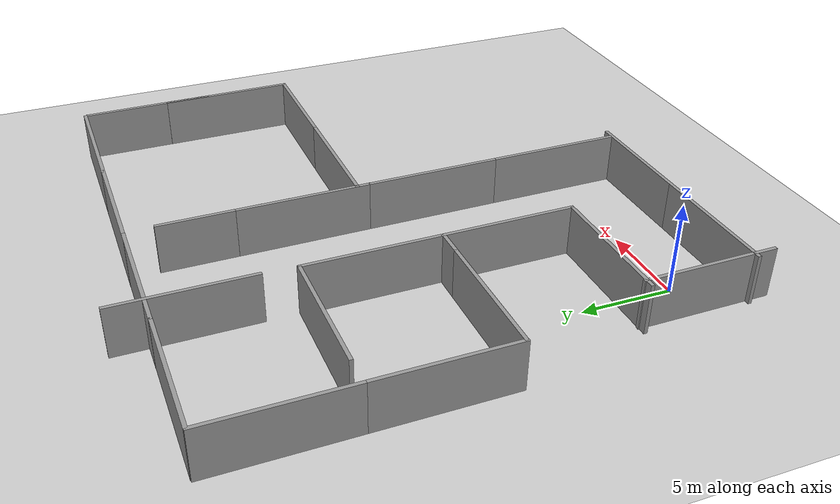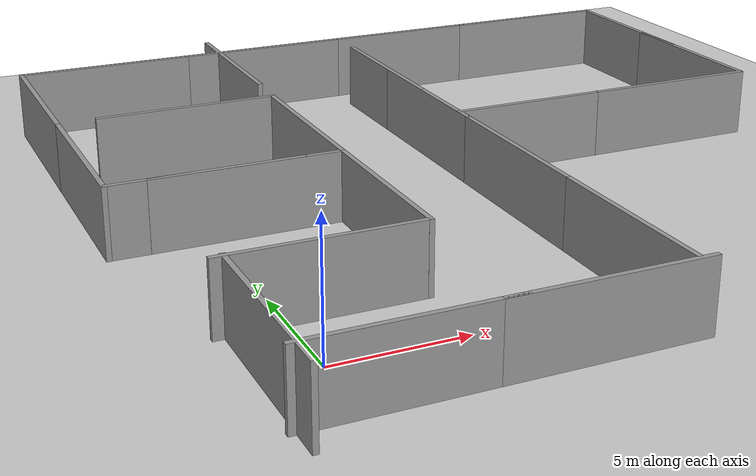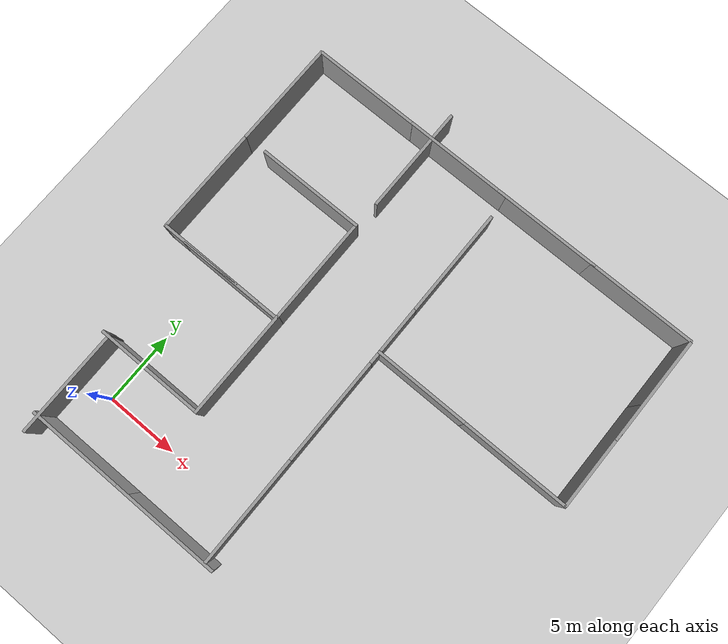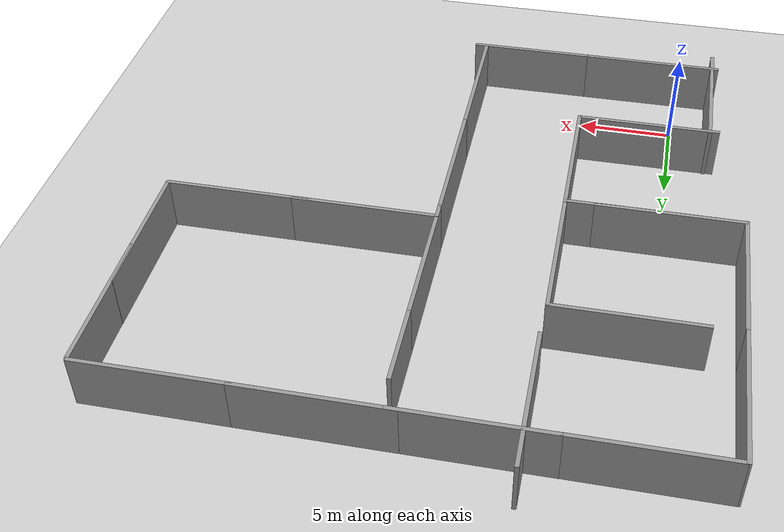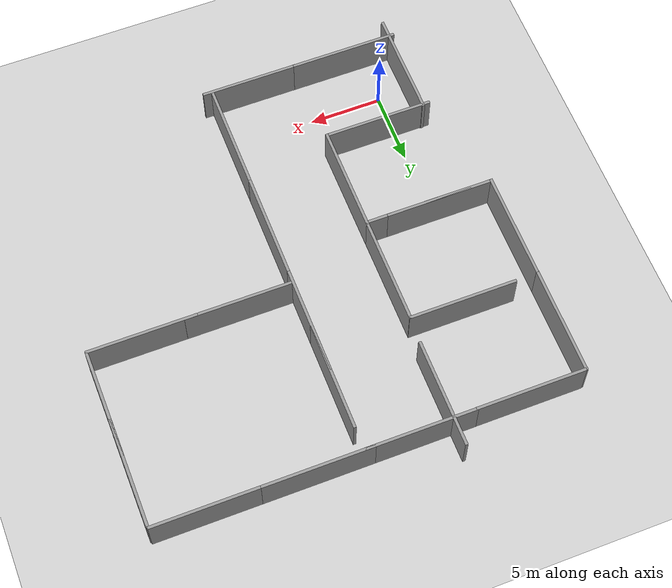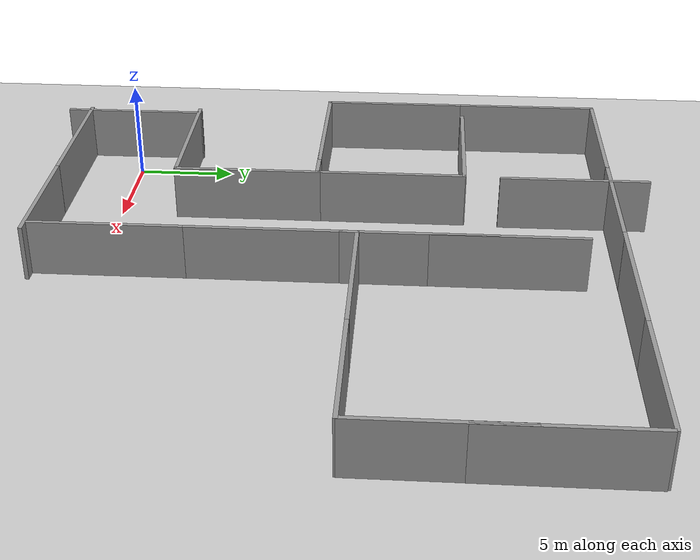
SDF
<sdf version="1.7">
 <world name="default">
  <light name="sun" type="directional">
   <pose>0 0 10 0 -0 0</pose>
   <diffuse>0.8 0.8 0.8 1</diffuse>
   <specular>0.2 0.2 0.2 1</specular>
   <attenuation>
    <range>1000</range>
    <constant>0.9</constant>
    <linear>0.01</linear>
    <quadratic>0.001</quadratic>
   </attenuation>
   <direction>-0.5 0.1 -0.9</direction>
   <spot><inner_angle>0</inner_angle><outer_angle>0</outer_angle><falloff>0</falloff></spot>
  </light>
  <model name="ground_plane">
   <static>1</static>
   <link name="link">
    <collision name="collision">
     <geometry><plane><normal>0 0 1</normal><size>100 100</size></plane></geometry>
     <surface>
      <contact><collide_bitmask>65535</collide_bitmask></contact>
      <friction><ode><mu>100</mu><mu2>50</mu2></ode></friction>
     </surface>
    </collision>
    <visual name="visual">
     <cast_shadows>0</cast_shadows>
     <geometry><plane><normal>0 0 1</normal><size>100 100</size></plane></geometry>
     <material>
      <script><uri>file://media/materials/scripts/gazebo.material</uri><name>Gazebo/Grey</name></script>
     </material>
    </visual>
   </link>
  </model>
  <gravity>0 0 -9.8</gravity>
  <magnetic_field>6e-06 2.3e-05 -4.2e-05</magnetic_field>
  <atmosphere type="adiabatic"/>
  <physics type="ode">
   <max_step_size>0.001</max_step_size>
   <real_time_factor>1</real_time_factor>
   <real_time_update_rate>1000</real_time_update_rate>
  </physics>
  <scene><ambient>0.4 0.4 0.4 1</ambient><background>0.7 0.7 0.7 1</background><shadows>1</shadows></scene>
  <spherical_coordinates>
   <surface_model>EARTH_WGS84</surface_model>
   <latitude_deg>0</latitude_deg>
   <longitude_deg>0</longitude_deg>
   <elevation>0</elevation>
   <heading_deg>0</heading_deg>
  </spherical_coordinates>
  <model name="grey_wall">
   <static>1</static>
   <link name="link">
    <pose>0 0 1.4 0 -0 0</pose>
    <collision name="collision"><geometry><box><size>7.5 0.2 2.8</size></box></geometry></collision>
    <visual name="visual">
     <cast_shadows>0</cast_shadows>
     <geometry><box><size>7.5 0.2 2.8</size></box></geometry>
     <material>
      <script>
       <uri>model://grey_wall/materials/scripts</uri>
       <uri>model://grey_wall/materials/textures</uri>
       <name>vrc/grey_wall</name>
      </script>
     </material>
    </visual>
   </link>
   <pose>1.40217 -3.11305 0 0 -0 0</pose>
  </model>
  <model name="grey_wall_clone">
   <static>1</static>
   <link name="link">
    <pose>0 0 1.4 0 -0 0</pose>
    <collision name="collision"><geometry><box><size>7.5 0.2 2.8</size></box></geometry></collision>
    <visual name="visual">
     <cast_shadows>0</cast_shadows>
     <geometry><box><size>7.5 0.2 2.8</size></box></geometry>
     <material>
      <script>
       <uri>model://grey_wall/materials/scripts</uri>
       <uri>model://grey_wall/materials/textures</uri>
       <name>vrc/grey_wall</name>
      </script>
     </material>
    </visual>
   </link>
   <pose>-2 -0.592398 0 0 0 -1.56643</pose>
  </model>
  <model name="grey_wall_clone_0">
   <static>1</static>
   <link name="link">
    <pose>0 0 1.4 0 -0 0</pose>
    <collision name="collision"><geometry><box><size>7.5 0.2 2.8</size></box></geometry></collision>
    <visual name="visual">
     <cast_shadows>0</cast_shadows>
     <geometry><box><size>7.5 0.2 2.8</size></box></geometry>
     <material>
      <script>
       <uri>model://grey_wall/materials/scripts</uri>
       <uri>model://grey_wall/materials/textures</uri>
       <name>vrc/grey_wall</name>
      </script>
     </material>
    </visual>
   </link>
   <pose>1.22571 3 0 0 -0 0</pose>
  </model>
  <model name="grey_wall_clone_1">
   <static>1</static>
   <link name="link">
    <pose>0 0 1.4 0 -0 0</pose>
    <collision name="collision"><geometry><box><size>7.5 0.2 2.8</size></box></geometry></collision>
    <visual name="visual">
     <cast_shadows>0</cast_shadows>
     <geometry><box><size>7.5 0.2 2.8</size></box></geometry>
     <material>
      <script>
       <uri>model://grey_wall/materials/scripts</uri>
       <uri>model://grey_wall/materials/textures</uri>
       <name>vrc/grey_wall</name>
      </script>
     </material>
    </visual>
   </link>
   <pose>8 -3.11325 -0 0 -0 0</pose>
  </model>
  <model name="grey_wall_clone_clone">
   <static>1</static>
   <link name="link">
    <pose>0 0 1.4 0 -0 0</pose>
    <collision name="collision"><geometry><box><size>7.5 0.2 2.8</size></box></geometry></collision>
    <visual name="visual">
     <cast_shadows>0</cast_shadows>
     <geometry><box><size>7.5 0.2 2.8</size></box></geometry>
     <material>
      <script>
       <uri>model://grey_wall/materials/scripts</uri>
       <uri>model://grey_wall/materials/textures</uri>
       <name>vrc/grey_wall</name>
      </script>
     </material>
    </visual>
   </link>
   <pose>11.0667 0.702394 0 0 0 -1.56643</pose>
  </model>
  <model name="grey_wall_clone_clone_0">
   <static>1</static>
   <link name="link">
    <pose>0 0 1.4 0 -0 0</pose>
    <collision name="collision"><geometry><box><size>7.5 0.2 2.8</size></box></geometry></collision>
    <visual name="visual">
     <cast_shadows>0</cast_shadows>
     <geometry><box><size>7.5 0.2 2.8</size></box></geometry>
     <material>
      <script>
       <uri>model://grey_wall/materials/scripts</uri>
       <uri>model://grey_wall/materials/textures</uri>
       <name>vrc/grey_wall</name>
      </script>
     </material>
    </visual>
   </link>
   <pose>11.0338 8.18805 0 0 0 -1.56643</pose>
  </model>
  <model name="grey_wall_clone_clone_0_clone_0">
   <static>1</static>
   <link name="link">
    <pose>0 0 1.4 0 -0 0</pose>
    <collision name="collision"><geometry><box><size>7.5 0.2 2.8</size></box></geometry></collision>
    <visual name="visual">
     <cast_shadows>0</cast_shadows>
     <geometry><box><size>7.5 0.2 2.8</size></box></geometry>
     <material>
      <script>
       <uri>model://grey_wall/materials/scripts</uri>
       <uri>model://grey_wall/materials/textures</uri>
       <name>vrc/grey_wall</name>
      </script>
     </material>
    </visual>
   </link>
   <pose>4.96657 6.64857 0 0 0 -1.56643</pose>
  </model>
  <model name="grey_wall_clone_clone_0_clone_1">
   <static>1</static>
   <link name="link">
    <pose>0 0 1.4 0 -0 0</pose>
    <collision name="collision"><geometry><box><size>7.5 0.2 2.8</size></box></geometry></collision>
    <visual name="visual">
     <cast_shadows>0</cast_shadows>
     <geometry><box><size>7.5 0.2 2.8</size></box></geometry>
     <material>
      <script>
       <uri>model://grey_wall/materials/scripts</uri>
       <uri>model://grey_wall/materials/textures</uri>
       <name>vrc/grey_wall</name>
      </script>
     </material>
    </visual>
   </link>
   <pose>11.002 15.5366 0 0 0 -1.56643</pose>
  </model>
  <model name="grey_wall_clone_clone_0_clone_0_clone_0">
   <static>1</static>
   <link name="link">
    <pose>0 0 1.4 0 -0 0</pose>
    <collision name="collision"><geometry><box><size>7.5 0.2 2.8</size></box></geometry></collision>
    <visual name="visual">
     <cast_shadows>0</cast_shadows>
     <geometry><box><size>7.5 0.2 2.8</size></box></geometry>
     <material>
      <script>
       <uri>model://grey_wall/materials/scripts</uri>
       <uri>model://grey_wall/materials/textures</uri>
       <name>vrc/grey_wall</name>
      </script>
     </material>
    </visual>
   </link>
   <pose>10.9845 19.7202 0 0 0 -1.56643</pose>
  </model>
  <model name="grey_wall_clone_0_clone">
   <static>1</static>
   <link name="link">
    <pose>0 0 1.4 0 -0 0</pose>
    <collision name="collision"><geometry><box><size>7.5 0.2 2.8</size></box></geometry></collision>
    <visual name="visual">
     <cast_shadows>0</cast_shadows>
     <geometry><box><size>7.5 0.2 2.8</size></box></geometry>
     <material>
      <script>
       <uri>model://grey_wall/materials/scripts</uri>
       <uri>model://grey_wall/materials/textures</uri>
       <name>vrc/grey_wall</name>
      </script>
     </material>
    </visual>
   </link>
   <pose>7.11633 25.0158 0 0 -0 0</pose>
  </model>
  <model name="grey_wall_clone_clone_0_clone_0_clone">
   <static>1</static>
   <link name="link">
    <pose>0 0 1.4 0 -0 0</pose>
    <collision name="collision"><geometry><box><size>7.5 0.2 2.8</size></box></geometry></collision>
    <visual name="visual">
     <cast_shadows>0</cast_shadows>
     <geometry><box><size>7.5 0.2 2.8</size></box></geometry>
     <material>
      <script>
       <uri>model://grey_wall/materials/scripts</uri>
       <uri>model://grey_wall/materials/textures</uri>
       <name>vrc/grey_wall</name>
      </script>
     </material>
    </visual>
   </link>
   <pose>4.93403 14.0157 0 0 0 -1.56643</pose>
  </model>
  <model name="grey_wall_clone_clone_0_clone_0_clone_clone">
   <static>1</static>
   <link name="link">
    <pose>0 0 1.4 0 -0 0</pose>
    <collision name="collision"><geometry><box><size>7.5 0.2 2.8</size></box></geometry></collision>
    <visual name="visual">
     <cast_shadows>0</cast_shadows>
     <geometry><box><size>7.5 0.2 2.8</size></box></geometry>
     <material>
      <script>
       <uri>model://grey_wall/materials/scripts</uri>
       <uri>model://grey_wall/materials/textures</uri>
       <name>vrc/grey_wall</name>
      </script>
     </material>
    </visual>
   </link>
   <pose>4.99892 23.2462 0 0 0 -1.56643</pose>
  </model>
  <model name="grey_wall_clone_0_clone_clone">
   <static>1</static>
   <link name="link">
    <pose>0 0 1.4 0 -0 0</pose>
    <collision name="collision"><geometry><box><size>7.5 0.2 2.8</size></box></geometry></collision>
    <visual name="visual">
     <cast_shadows>0</cast_shadows>
     <geometry><box><size>7.5 0.2 2.8</size></box></geometry>
     <material>
      <script>
       <uri>model://grey_wall/materials/scripts</uri>
       <uri>model://grey_wall/materials/textures</uri>
       <name>vrc/grey_wall</name>
      </script>
     </material>
    </visual>
   </link>
   <pose>13.9606 25.0202 0 0 -0 0</pose>
  </model>
  <model name="grey_wall_clone_0_clone_clone_0">
   <static>1</static>
   <link name="link">
    <pose>0 0 1.4 0 -0 0</pose>
    <collision name="collision"><geometry><box><size>7.5 0.2 2.8</size></box></geometry></collision>
    <visual name="visual">
     <cast_shadows>0</cast_shadows>
     <geometry><box><size>7.5 0.2 2.8</size></box></geometry>
     <material>
      <script>
       <uri>model://grey_wall/materials/scripts</uri>
       <uri>model://grey_wall/materials/textures</uri>
       <name>vrc/grey_wall</name>
      </script>
     </material>
    </visual>
   </link>
   <pose>14.674 12.6241 0 0 -0 0</pose>
  </model>
  <model name="grey_wall_clone_0_clone_clone_0_clone">
   <static>1</static>
   <link name="link">
    <pose>0 0 1.4 0 -0 0</pose>
    <collision name="collision"><geometry><box><size>7.5 0.2 2.8</size></box></geometry></collision>
    <visual name="visual">
     <cast_shadows>0</cast_shadows>
     <geometry><box><size>7.5 0.2 2.8</size></box></geometry>
     <material>
      <script>
       <uri>model://grey_wall/materials/scripts</uri>
       <uri>model://grey_wall/materials/textures</uri>
       <name>vrc/grey_wall</name>
      </script>
     </material>
    </visual>
   </link>
   <pose>21.258 12.6215 0 0 -0 0</pose>
  </model>
  <model name="grey_wall_clone_clone_0_clone_0_clone_0_clone">
   <static>1</static>
   <link name="link">
    <pose>0 0 1.4 0 -0 0</pose>
    <collision name="collision"><geometry><box><size>7.5 0.2 2.8</size></box></geometry></collision>
    <visual name="visual">
     <cast_shadows>0</cast_shadows>
     <geometry><box><size>7.5 0.2 2.8</size></box></geometry>
     <material>
      <script>
       <uri>model://grey_wall/materials/scripts</uri>
       <uri>model://grey_wall/materials/textures</uri>
       <name>vrc/grey_wall</name>
      </script>
     </material>
    </visual>
   </link>
   <pose>24.9131 16.3545 0 0 0 -1.56643</pose>
  </model>
  <model name="grey_wall_clone_0_clone_clone_clone">
   <static>1</static>
   <link name="link">
    <pose>0 0 1.4 0 -0 0</pose>
    <collision name="collision"><geometry><box><size>7.5 0.2 2.8</size></box></geometry></collision>
    <visual name="visual">
     <cast_shadows>0</cast_shadows>
     <geometry><box><size>7.5 0.2 2.8</size></box></geometry>
     <material>
      <script>
       <uri>model://grey_wall/materials/scripts</uri>
       <uri>model://grey_wall/materials/textures</uri>
       <name>vrc/grey_wall</name>
      </script>
     </material>
    </visual>
   </link>
   <pose>21.1707 25.0196 -0 0 -0 0</pose>
  </model>
  <model name="grey_wall_clone_clone_0_clone_0_clone_0_clone_clone">
   <static>1</static>
   <link name="link">
    <pose>0 0 1.4 0 -0 0</pose>
    <collision name="collision"><geometry><box><size>7.5 0.2 2.8</size></box></geometry></collision>
    <visual name="visual">
     <cast_shadows>0</cast_shadows>
     <geometry><box><size>7.5 0.2 2.8</size></box></geometry>
     <material>
      <script>
       <uri>model://grey_wall/materials/scripts</uri>
       <uri>model://grey_wall/materials/textures</uri>
       <name>vrc/grey_wall</name>
      </script>
     </material>
    </visual>
   </link>
   <pose>24.8992 21.2455 0 0 0 -1.56643</pose>
  </model>
  <model name="grey_wall_clone_0_clone_clone_1">
   <static>1</static>
   <link name="link">
    <pose>0 0 1.4 0 -0 0</pose>
    <collision name="collision"><geometry><box><size>7.5 0.2 2.8</size></box></geometry></collision>
    <visual name="visual">
     <cast_shadows>0</cast_shadows>
     <geometry><box><size>7.5 0.2 2.8</size></box></geometry>
     <material>
      <script>
       <uri>model://grey_wall/materials/scripts</uri>
       <uri>model://grey_wall/materials/textures</uri>
       <name>vrc/grey_wall</name>
      </script>
     </material>
    </visual>
   </link>
   <pose>-0.268428 25.0078 0 0 -0 0</pose>
  </model>
  <model name="grey_wall_clone_0_clone_clone_1_clone">
   <static>1</static>
   <link name="link">
    <pose>0 0 1.4 0 -0 0</pose>
    <collision name="collision"><geometry><box><size>7.5 0.2 2.8</size></box></geometry></collision>
    <visual name="visual">
     <cast_shadows>0</cast_shadows>
     <geometry><box><size>7.5 0.2 2.8</size></box></geometry>
     <material>
      <script>
       <uri>model://grey_wall/materials/scripts</uri>
       <uri>model://grey_wall/materials/textures</uri>
       <name>vrc/grey_wall</name>
      </script>
     </material>
    </visual>
   </link>
   <pose>1.2661 17.7091 0 0 -0 0</pose>
  </model>
  <model name="grey_wall_clone_clone_0_clone_0_clone_clone_clone">
   <static>1</static>
   <link name="link">
    <pose>0 0 1.4 0 -0 0</pose>
    <collision name="collision"><geometry><box><size>7.5 0.2 2.8</size></box></geometry></collision>
    <visual name="visual">
     <cast_shadows>0</cast_shadows>
     <geometry><box><size>7.5 0.2 2.8</size></box></geometry>
     <material>
      <script>
       <uri>model://grey_wall/materials/scripts</uri>
       <uri>model://grey_wall/materials/textures</uri>
       <name>vrc/grey_wall</name>
      </script>
     </material>
    </visual>
   </link>
   <pose>-4.01016 21.3343 0 0 0 -1.56643</pose>
  </model>
  <model name="grey_wall_clone_clone_0_clone_0_clone_clone_clone_clone">
   <static>1</static>
   <link name="link">
    <pose>0 0 1.4 0 -0 0</pose>
    <collision name="collision"><geometry><box><size>7.5 0.2 2.8</size></box></geometry></collision>
    <visual name="visual">
     <cast_shadows>0</cast_shadows>
     <geometry><box><size>7.5 0.2 2.8</size></box></geometry>
     <material>
      <script>
       <uri>model://grey_wall/materials/scripts</uri>
       <uri>model://grey_wall/materials/textures</uri>
       <name>vrc/grey_wall</name>
      </script>
     </material>
    </visual>
   </link>
   <pose>-3.97615 13.8881 0 0 0 -1.56643</pose>
  </model>
  <model name="grey_wall_clone_0_clone_clone_1_clone_clone">
   <static>1</static>
   <link name="link">
    <pose>0 0 1.4 0 -0 0</pose>
    <collision name="collision"><geometry><box><size>7.5 0.2 2.8</size></box></geometry></collision>
    <visual name="visual">
     <cast_shadows>0</cast_shadows>
     <geometry><box><size>7.5 0.2 2.8</size></box></geometry>
     <material>
      <script>
       <uri>model://grey_wall/materials/scripts</uri>
       <uri>model://grey_wall/materials/textures</uri>
       <name>vrc/grey_wall</name>
      </script>
     </material>
    </visual>
   </link>
   <pose>-0.252782 10.2459 0 0 -0 0</pose>
  </model>
  <model name="grey_wall_clone_0_clone_clone_1_clone_clone_0">
   <static>1</static>
   <link name="link">
    <pose>0 0 1.4 0 -0 0</pose>
    <collision name="collision"><geometry><box><size>7.5 0.2 2.8</size></box></geometry></collision>
    <visual name="visual">
     <cast_shadows>0</cast_shadows>
     <geometry><box><size>7.5 0.2 2.8</size></box></geometry>
     <material>
      <script>
       <uri>model://grey_wall/materials/scripts</uri>
       <uri>model://grey_wall/materials/textures</uri>
       <name>vrc/grey_wall</name>
      </script>
     </material>
    </visual>
   </link>
   <pose>1.29937 10.2424 0 0 -0 0</pose>
  </model>
 </world>
</sdf>
